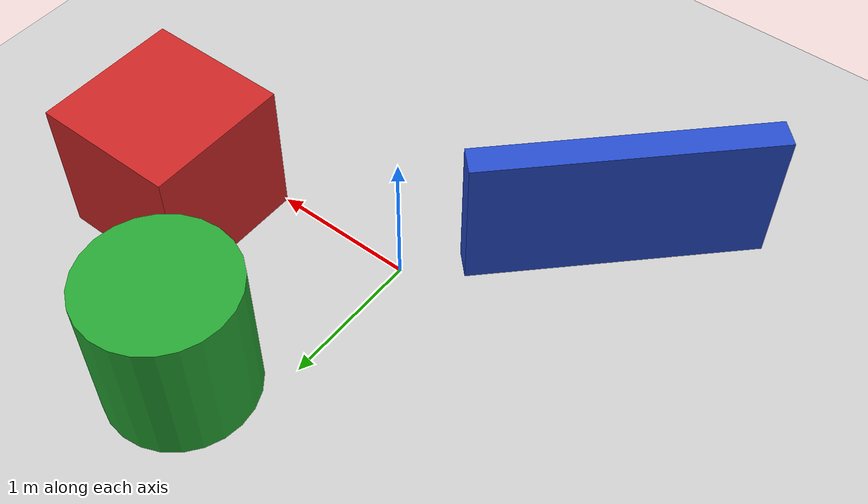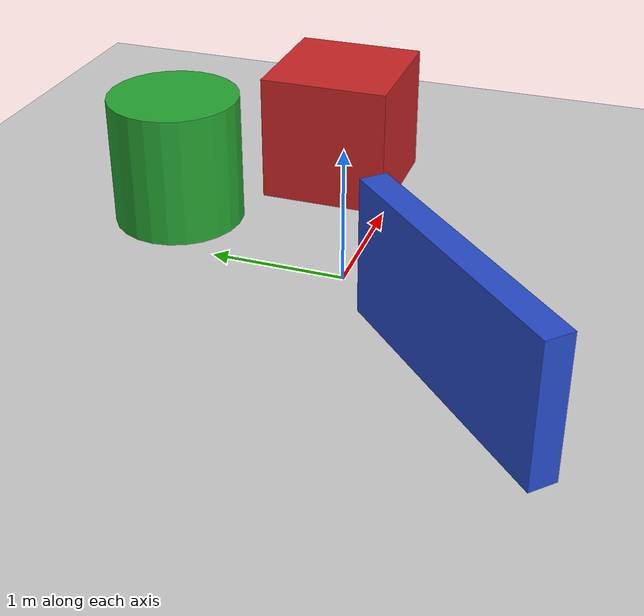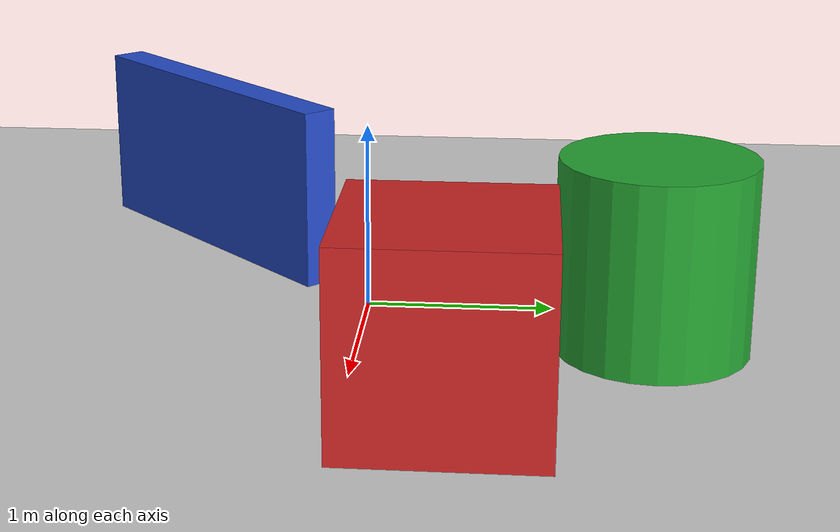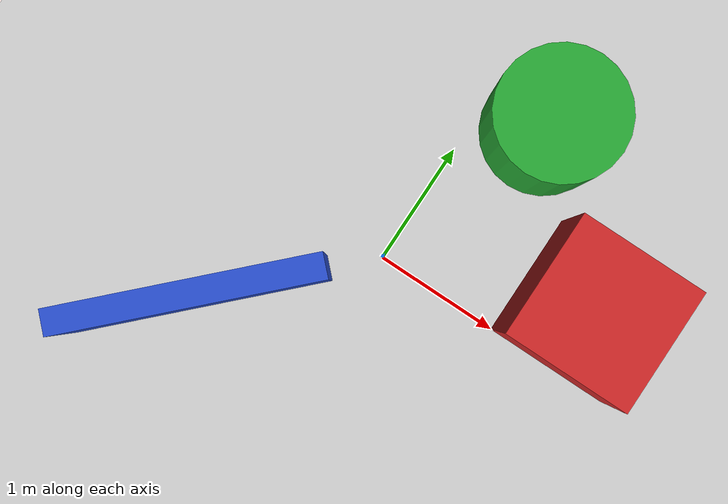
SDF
<?xml version="1.0" ?>
<sdf version="1.6">
  <world name="default">
    <!-- A global light source -->
    <light name="sun" type="directional">
      <cast_shadows>false</cast_shadows>
      <pose>0 0 10 0 -0 0</pose>
      <diffuse>0.8 0.8 0.8 1</diffuse>
      <specular>0.2 0.2 0.2 1</specular>
      <attenuation>
        <range>1000</range>
        <constant>0.9</constant>
        <linear>0.01</linear>
        <quadratic>0.001</quadratic>
      </attenuation>
      <direction>-0.5 0.1 -0.9</direction>
    </light>

    <!-- A ground plane -->
    <model name="ground_plane">
      <static>true</static>
      <link name="link">
        <collision name="collision">
          <geometry>
            <plane>
              <normal>0 0 1</normal>
              <size>100 100</size>
            </plane>
          </geometry>
          <surface>
            <friction>
              <ode>
                <mu>100</mu>
                <mu2>50</mu2>
              </ode>
            </friction>
          </surface>
        </collision>
        <visual name="visual">
          <geometry>
            <plane>
              <normal>0 0 1</normal>
              <size>100 100</size>
            </plane>
          </geometry>
          <material>
            <ambient>0.8 0.8 0.8 1</ambient>
          </material>
        </visual>
      </link>
    </model>

    <!-- Physics settings optimized for WSL Software Rendering -->
    <physics type="ode">
      <max_step_size>0.002</max_step_size>
      <real_time_factor>1</real_time_factor>
      <real_time_update_rate>250</real_time_update_rate>
    </physics>

    <!-- Disable shadows for better CPU rendering FPS -->
    <scene>
      <ambient>0.4 0.4 0.4 1</ambient>
      <background>0.7 0.7 0.7 1</background>
      <shadows>false</shadows>
    </scene>

    <!-- Obstacles for Navigation Testing -->
    <model name="box1">
      <pose>1.5 0.5 0.5 0 0 0</pose>
      <static>true</static>
      <link name="link">
        <collision name="collision">
          <geometry>
            <box>
              <size>1 1 1</size>
            </box>
          </geometry>
        </collision>
        <visual name="visual">
          <geometry>
            <box>
              <size>1 1 1</size>
            </box>
          </geometry>
          <material>
            <ambient>0.8 0.1 0.1 1</ambient>
            <diffuse>0.8 0.1 0.1 1</diffuse>
            <specular>0.1 0.1 0.1 1</specular>
            <script>
              <uri>file://media/materials/scripts/gazebo.material</uri>
              <name>Gazebo/Red</name>
            </script>
          </material>
        </visual>
      </link>
    </model>

    <model name="cylinder2">
      <pose>0.5 1.5 0.5 0 0 0</pose>
      <static>true</static>
      <link name="link">
        <collision name="collision">
          <geometry>
            <cylinder>
              <radius>0.5</radius>
              <length>1.0</length>
            </cylinder>
          </geometry>
        </collision>
        <visual name="visual">
          <geometry>
            <cylinder>
              <radius>0.5</radius>
              <length>1.0</length>
            </cylinder>
          </geometry>
          <material>
            <ambient>0.1 0.8 0.1 1</ambient>
            <diffuse>0.1 0.8 0.1 1</diffuse>
            <specular>0.1 0.1 0.1 1</specular>
            <script>
              <uri>file://media/materials/scripts/gazebo.material</uri>
              <name>Gazebo/Green</name>
            </script>
          </material>
        </visual>
      </link>
    </model>

    <model name="wall3">
      <pose>-1.0 -1.0 0.5 0 0 0.785</pose>
      <static>true</static>
      <link name="link">
        <collision name="collision">
          <geometry>
            <box>
              <size>2.0 0.2 1.0</size>
            </box>
          </geometry>
        </collision>
        <visual name="visual">
          <geometry>
            <box>
              <size>2.0 0.2 1.0</size>
            </box>
          </geometry>
          <material>
            <ambient>0.1 0.1 0.8 1</ambient>
            <diffuse>0.1 0.1 0.8 1</diffuse>
            <specular>0.1 0.1 0.1 1</specular>
            <script>
              <uri>file://media/materials/scripts/gazebo.material</uri>
              <name>Gazebo/Blue</name>
            </script>
          </material>
        </visual>
      </link>
    </model>

  </world>
</sdf>
